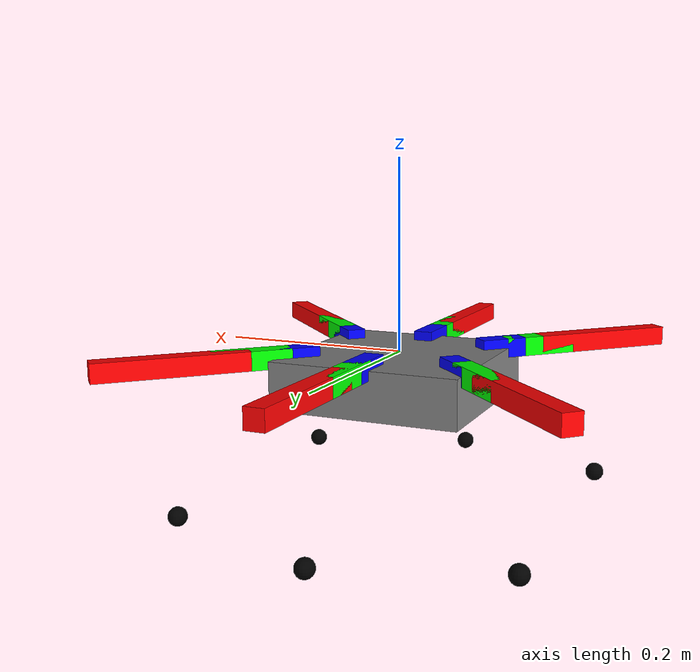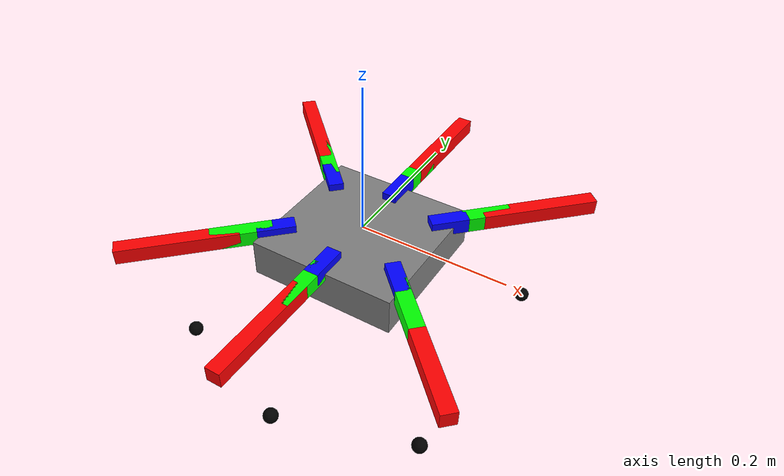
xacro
<?xml version="1.0"?>
<robot xmlns:xacro="http://ros.org/wiki/xacro" name="hexapod">

  <!-- General properties -->
  <xacro:property name="joint_lower_limit" value="-1.39626" /> <!-- -80 degrees -->
  <xacro:property name="joint_upper_limit" value="1.39626" />  <!-- +80 degrees -->
  <xacro:property name="joint_effort" value="10" />
  <xacro:property name="joint_velocity" value="5" />

  <!-- Base link -->
  <link name="base_link">
    <visual>
      <geometry>
        <box size="0.2 0.2 0.05" />
      </geometry>
      <origin xyz="0 0 -0.025" />
      <material name="grey">
        <color rgba="0.5 0.5 0.5 1" />
      </material>
    </visual>
  </link>

  <!-- Leg macro -->
  <xacro:macro name="leg" params="name x y angle side">
    <!-- Coxa joint -->
    <joint name="coxa_joint_${name}" type="revolute">
      <parent link="base_link" />
      <child link="coxa_${name}" />
      <origin xyz="${x} ${y} 0" rpy="0 0 ${angle}" />
      <axis xyz="0 0 ${side}" /> <!-- Coxa rotates about the Z-axis -->
      <limit lower="${joint_lower_limit}" upper="${joint_upper_limit}" effort="${joint_effort}" velocity="${joint_velocity}" />
    </joint>
    <link name="coxa_${name}">
      <visual>
        <geometry>
          <box size="0.05 0.02 0.02" />
        </geometry>
        <material name="blue">
          <color rgba="0 0 1 1" />
        </material>
      </visual>
    </link>

    <!-- Femur joint -->
    <joint name="femur_joint_${name}" type="revolute">
      <parent link="coxa_${name}" />
      <child link="femur_${name}" />
      <origin xyz="0.044 0 0" rpy="0 0 0" />
      <axis xyz="0 ${side} 0" /> <!-- Femur rotates about the Y-axis -->
      <limit lower="${joint_lower_limit}" upper="${joint_upper_limit}" effort="${joint_effort}" velocity="${joint_velocity}" />
    </joint>
    <link name="femur_${name}">
      <visual>
        <geometry>
          <box size="0.08 0.02 0.02" />
        </geometry>
        <material name="green">
          <color rgba="0 1 0 1" />
        </material>
      </visual>
    </link>

    <!-- Tibia joint -->
    <joint name="tibia_joint_${name}" type="revolute">
      <parent link="femur_${name}" />
      <child link="tibia_${name}" />
      <origin xyz="0.08 0 0" rpy="0 0 0" />
      <axis xyz="0 ${side} 0" /> <!-- Tibia rotates about the Y-axis -->
      <limit lower="${joint_lower_limit}" upper="${joint_upper_limit}" effort="${joint_effort}" velocity="${joint_velocity}" />
    </joint>
    <link name="tibia_${name}">
      <visual>
        <geometry>
          <box size="0.155 0.02 0.02" />
        </geometry>
        <material name="red">
          <color rgba="1 0 0 1" />
        </material>
      </visual>
    </link>

    <!-- Foot -->
    <joint name="foot_joint_${name}" type="fixed">
      <parent link="tibia_${name}" />
      <child link="foot_${name}" />
      <origin xyz="0 0 -0.155" rpy="0 0 0" />
    </joint>
    <link name="foot_${name}">
      <visual>
        <geometry>
          <sphere radius="0.01" />
        </geometry>
        <material name="black">
          <color rgba="0 0 0 1" />
        </material>
      </visual>
    </link>
  </xacro:macro>

  <!-- Legs -->
  <xacro:leg name="0" x="-0.09" y="-0.065" angle="-2.35619" side="1" /> <!-- Back Left -->
  <xacro:leg name="1" x="0.0" y="-0.09" angle="-1.5708" side="1" />     <!-- Left -->
  <xacro:leg name="2" x="0.09" y="-0.065" angle="-0.7854" side="1" />   <!-- Front Left -->
  <xacro:leg name="3" x="-0.09" y="0.065" angle="2.35619" side="-1" />  <!-- Back Right -->
  <xacro:leg name="4" x="0.0" y="0.09" angle="1.5708" side="-1" />      <!-- Right -->
  <xacro:leg name="5" x="0.09" y="0.065" angle="0.7854" side="-1" />    <!-- Front Right -->

</robot>
